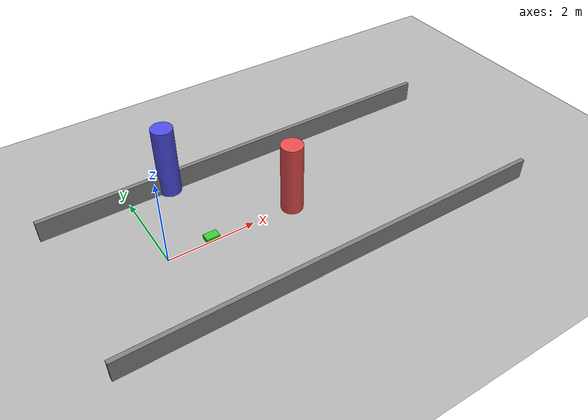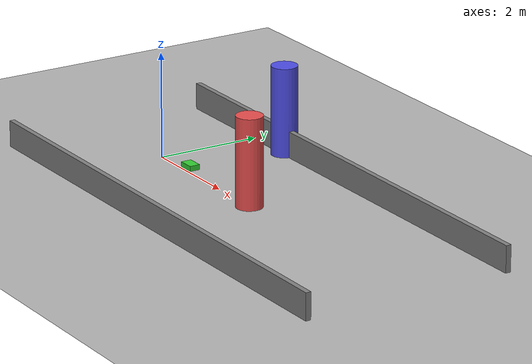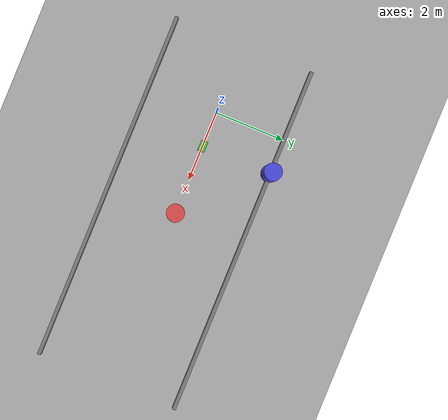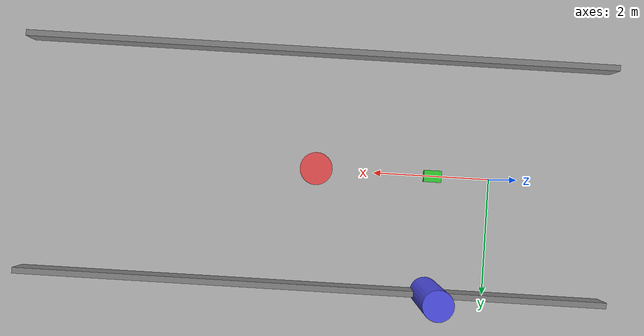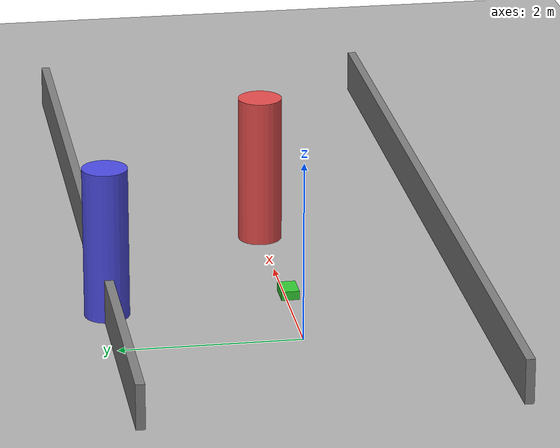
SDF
<?xml version="1.0" ?>
<sdf version="1.6">
  <world name="default">

    <!-- Ground plane (inline, no model:// URI) -->
    <model name="ground_plane">
      <static>true</static>
      <link name="link">
        <collision name="collision">
          <geometry><plane><normal>0 0 1</normal><size>100 100</size></plane></geometry>
        </collision>
        <visual name="visual">
          <geometry><plane><normal>0 0 1</normal><size>100 100</size></plane></geometry>
          <material><ambient>0.3 0.3 0.3 1</ambient><diffuse>0.7 0.7 0.7 1</diffuse></material>
        </visual>
      </link>
    </model>

    <!-- Sun (inline) -->
    <light type="directional" name="sun">
      <cast_shadows>true</cast_shadows>
      <pose>0 0 10 0 0 0</pose>
      <direction>-0.5 0.5 -1</direction>
      <diffuse>1 1 1 1</diffuse>
      <specular>0.1 0.1 0.1 1</specular>
    </light>

    <model name="lidar_bot">
      <static>true</static>
      <pose>1.0 0.0 0.15 0 0 0</pose>
      <link name="base_link">
        <visual name="body_vis">
          <geometry><box><size>0.3 0.2 0.1</size></box></geometry>
          <material><ambient>0.1 0.6 0.1 1</ambient><diffuse>0.2 0.8 0.2 1</diffuse></material>
        </visual>
        <collision name="body_col">
          <geometry><box><size>0.3 0.2 0.1</size></box></geometry>
        </collision>

        <!-- GPU LiDAR sensor matching the real robot config -->
        <sensor name="lidar" type="gpu_lidar">
          <pose>0 0 0.05 0 0 0</pose>
          <topic>scan</topic>
          <update_rate>10</update_rate>
          <always_on>true</always_on>
          <visualize>true</visualize>
          <lidar>
            <scan>
              <horizontal>
                <samples>720</samples>
                <resolution>1</resolution>
                <min_angle>-3.14159</min_angle>
                <max_angle>3.14159</max_angle>
              </horizontal>
              <vertical>
                <samples>1</samples>
                <resolution>1</resolution>
                <min_angle>0</min_angle>
                <max_angle>0</max_angle>
              </vertical>
            </scan>
            <range>
              <min>0.12</min>
              <max>8.0</max>
              <resolution>0.01</resolution>
            </range>
            <noise>
              <type>gaussian</type>
              <mean>0.0</mean>
              <stddev>0.01</stddev>
            </noise>
          </lidar>
        </sensor>
      </link>
    </model>

    <model name="ped_static_cylinder">
      <static>true</static>
      <pose>3.0 0.0 0.85 0 0 0</pose>
      <link name="link">
        <collision name="collision">
          <geometry>
            <cylinder><radius>0.25</radius><length>1.7</length></cylinder>
          </geometry>
        </collision>
        <visual name="visual">
          <geometry>
            <cylinder><radius>0.25</radius><length>1.7</length></cylinder>
          </geometry>
          <material><ambient>0.8 0.2 0.2 1</ambient><diffuse>0.9 0.3 0.3 1</diffuse></material>
        </visual>
      </link>
    </model>

    <model name="ped_dynamic_cylinder">
      <static>false</static>
      <pose>1.0 2.0 0.85 0 0 0</pose>
      <link name="link">
        <inertial>
          <mass>70.0</mass>
          <inertia>
            <ixx>17.0</ixx><iyy>17.0</iyy><izz>1.1</izz>
            <ixy>0</ixy><ixz>0</ixz><iyz>0</iyz>
          </inertia>
        </inertial>
        <collision name="collision">
          <geometry>
            <cylinder><radius>0.25</radius><length>1.7</length></cylinder>
          </geometry>
        </collision>
        <visual name="visual">
          <geometry>
            <cylinder><radius>0.25</radius><length>1.7</length></cylinder>
          </geometry>
          <material><ambient>0.2 0.2 0.8 1</ambient><diffuse>0.3 0.3 0.9 1</diffuse></material>
        </visual>
      </link>
    </model>

    <!-- =================================================================
         Reference walls (simple corridor segment)
         ================================================================= -->
    <model name="wall_south">
      <static>true</static>
      <pose>3 -2 0.25 0 0 0</pose>
      <link name="link">
        <collision name="collision">
          <geometry><box><size>10.0 0.1 0.5</size></box></geometry>
        </collision>
        <visual name="visual">
          <geometry><box><size>10.0 0.1 0.5</size></box></geometry>
          <material><ambient>0.3 0.3 0.3 1</ambient><diffuse>0.5 0.5 0.5 1</diffuse></material>
        </visual>
      </link>
    </model>

    <model name="wall_north">
      <static>true</static>
      <pose>3 2 0.25 0 0 0</pose>
      <link name="link">
        <collision name="collision">
          <geometry><box><size>10.0 0.1 0.5</size></box></geometry>
        </collision>
        <visual name="visual">
          <geometry><box><size>10.0 0.1 0.5</size></box></geometry>
          <material><ambient>0.3 0.3 0.3 1</ambient><diffuse>0.5 0.5 0.5 1</diffuse></material>
        </visual>
      </link>
    </model>

    <!-- =================================================================
         Ignition Fortress (v6) system plugins
         ================================================================= -->
    <plugin filename="libignition-gazebo-physics-system.so"
            name="ignition::gazebo::systems::Physics"/>
    <plugin filename="libignition-gazebo-user-commands-system.so"
            name="ignition::gazebo::systems::UserCommands"/>
    <plugin filename="libignition-gazebo-scene-broadcaster-system.so"
            name="ignition::gazebo::systems::SceneBroadcaster"/>
    <plugin filename="libignition-gazebo-imu-system.so"
            name="ignition::gazebo::systems::Imu"/>
    <plugin filename="libignition-gazebo-sensors-system.so"
            name="ignition::gazebo::systems::Sensors">
      <render_engine>ogre2</render_engine>
    </plugin>

  </world>
</sdf>
